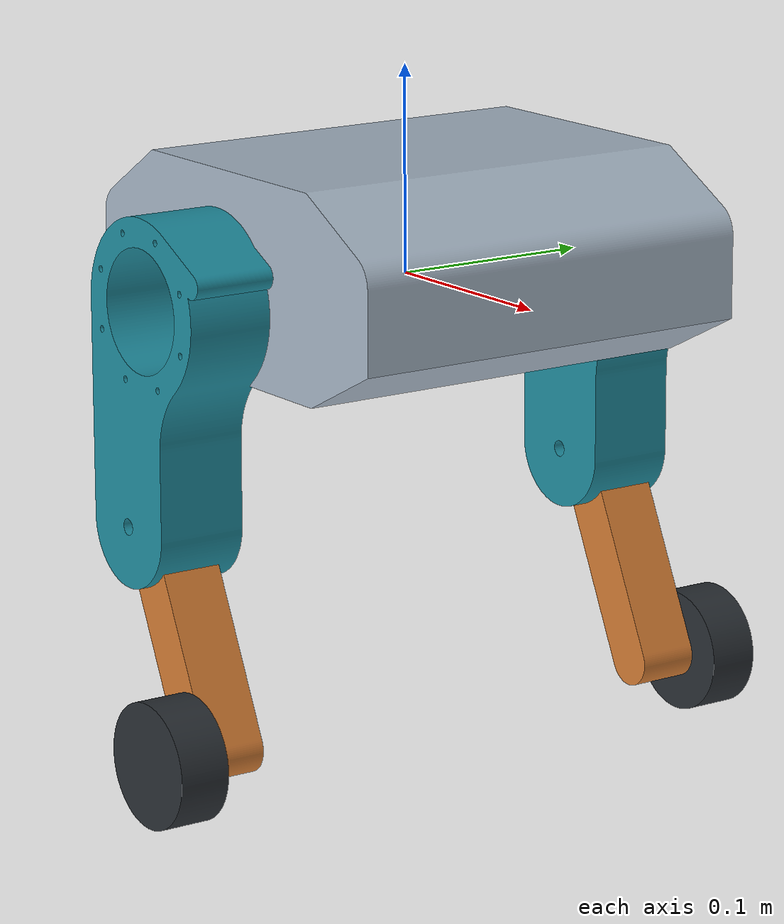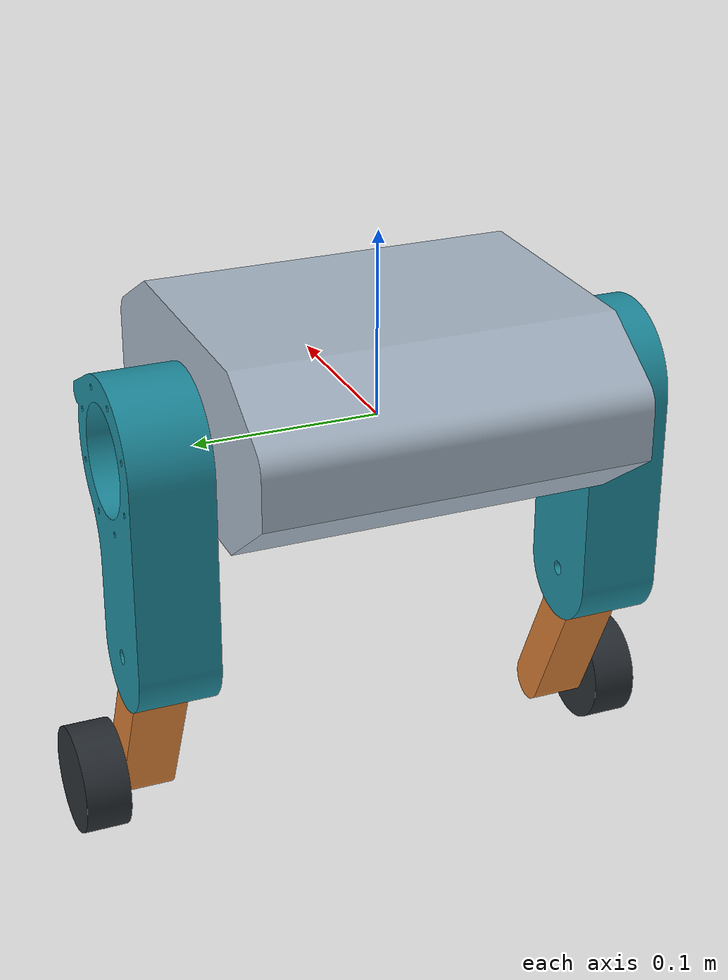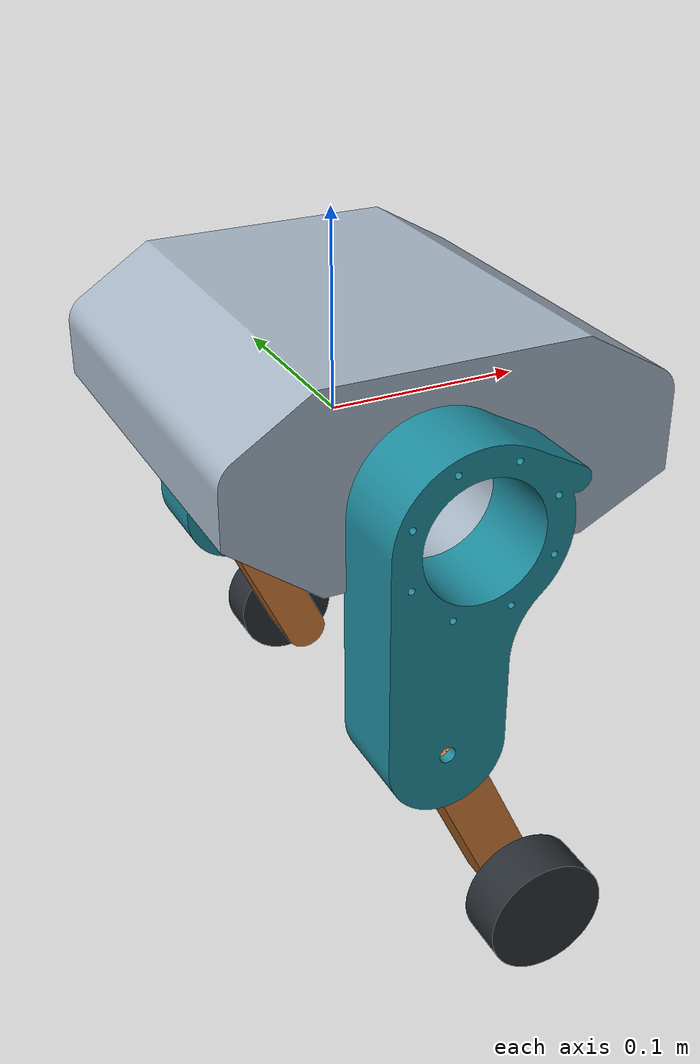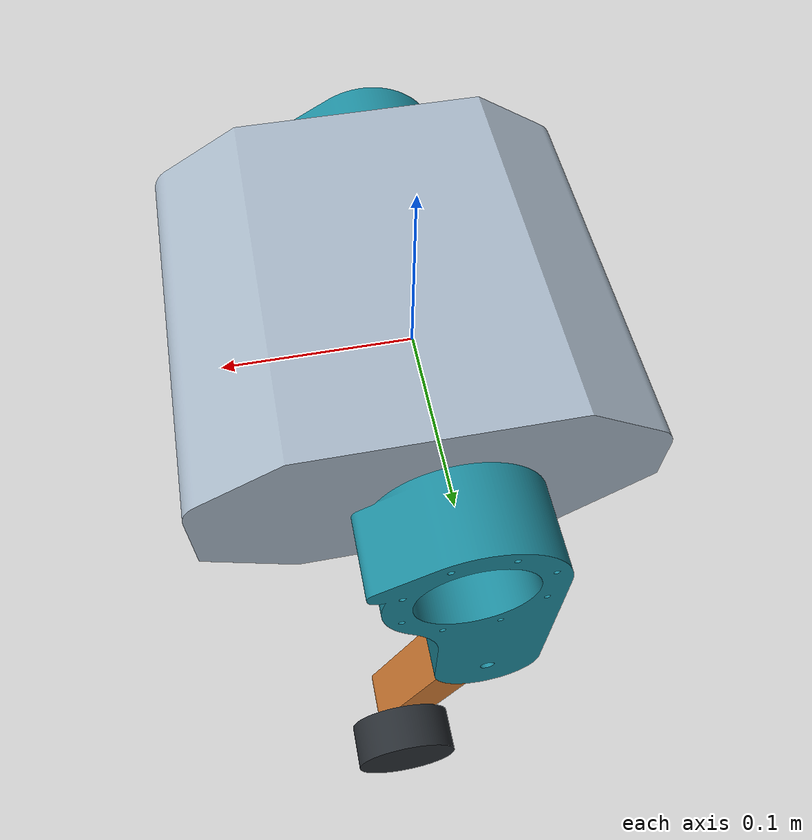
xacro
<?xml version="1.0"?>
<robot name="tap_robot" xmlns:xacro="http://www.ros.org/wiki/xacro">
  <xacro:arg name="simulation" default="true"/>
  <xacro:include filename="robot.urdf.xacro"/>
  <ros2_control name="GazeboSimSystem" type="system">
    <hardware>
      <xacro:if value="${jump_model}">
        <plugin>tap_sim/BoundedGazeboSystem</plugin>
        <param name="leg_speed_limit">${jump_leg_speed}</param>
        <param name="leg_velocity_damping">$(arg jump_leg_velocity_damping)</param>
      </xacro:if>
      <xacro:unless value="${jump_model}"><plugin>gz_ros2_control/GazeboSimSystem</plugin></xacro:unless>
    </hardware>
    <!-- Neutral stand from CAD whole-body COM, not a redefinition of joint zero. -->
    <xacro:macro name="actuator" params="name interface initial:=0">
      <joint name="${name}">
        <command_interface name="${interface}"/>
        <state_interface name="position"><param name="initial_value">${initial}</param></state_interface>
        <state_interface name="velocity"/>
        <state_interface name="effort"/>
      </joint>
    </xacro:macro>
    <xacro:actuator name="cad_left_hip" interface="effort" initial="0.11548309575"/>
    <xacro:actuator name="cad_left_knee" interface="effort"/>
    <xacro:actuator name="cad_right_hip" interface="effort" initial="0.11548309575"/>
    <xacro:actuator name="cad_right_knee" interface="effort"/>
    <xacro:actuator name="cad_left_wheel" interface="velocity"/>
    <xacro:actuator name="cad_right_wheel" interface="velocity"/>
  </ros2_control>
  <gazebo>
    <!-- No model-pose publisher: pose is simulator ground truth and is not a
         member of the MPU6500 + six-encoder sensing contract. -->
    <plugin filename="gz_ros2_control-system" name="gz_ros2_control::GazeboSimROS2ControlPlugin">
      <parameters>$(find tap_sim)/config/ros2_control.yaml</parameters>
    </plugin>
  </gazebo>
  <gazebo reference="cad_body">
    <sensor name="imu_sensor" type="imu">
      <pose>0 0 0 0 0 0</pose>
      <always_on>true</always_on>
      <update_rate>500</update_rate>
      <topic>/imu</topic>
      <gz_frame_id>cad_body</gz_frame_id>
      <imu/>
    </sensor>
  </gazebo>
  <gazebo reference="cad_left_wheel_link"><mu1>1.0</mu1><mu2>1.0</mu2></gazebo>
  <gazebo reference="cad_right_wheel_link"><mu1>1.0</mu1><mu2>1.0</mu2></gazebo>
</robot>

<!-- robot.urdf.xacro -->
<robot name="cad_wheel_leg" xmlns:xacro="http://www.ros.org/wiki/xacro">
  <!-- CAD pose is joint zero. Inertials are estimates; see PHYSICS.md. -->
  <xacro:arg name="simulation" default="false"/>
  <xacro:arg name="jump_model" default="false"/>
  <xacro:arg name="jump_leg_speed" default="12.566370614359172"/>
  <xacro:arg name="jump_leg_velocity_damping" default="0.0"/>
  <xacro:arg name="measure_contacts" default="false"/>
  <xacro:property name="jump_leg_speed" value="${float('$(arg jump_leg_speed)')}"/>
  <xacro:property name="jump_model" value="${'$(arg jump_model)' == 'true' and '$(arg simulation)' == 'true'}"/>
  <xacro:property name="measure_contacts" value="${'$(arg measure_contacts)' == 'true' and '$(arg simulation)' == 'true'}"/>
  <xacro:property name="simulation" value="${'$(arg simulation)' == 'true'}"/>
  <xacro:property name="mesh_root" value="package://tap_robot_description/description/cad_robot/meshes"/>
  <xacro:property name="masses" value="${xacro.load_yaml('masses.yaml')}"/>
  <xacro:property name="mesh_inertials" value="${xacro.load_yaml('mesh_inertials.yaml')}"/>
  <material name="cad_body"><color rgba="0.65 0.71 0.77 1"/></material>
  <material name="cad_thigh"><color rgba="0.12 0.55 0.62 1"/></material>
  <material name="cad_shin"><color rgba="0.82 0.48 0.20 1"/></material>
  <material name="cad_tire"><color rgba="0.16 0.18 0.20 1"/></material>

  <xacro:macro name="mesh_link" params="name mesh material mass_key mesh_pitch:=0">
    <xacro:property name="mass" value="${masses[mass_key]}"/>
    <xacro:property name="properties" value="${mesh_inertials[mesh]}"/>
    <xacro:property name="com" value="${properties['center_of_mass']}"/>
    <xacro:property name="tensor" value="${properties['inertia_per_kg']}"/>
    <link name="${name}">
      <visual>
        <origin rpy="0 ${mesh_pitch} 0"/>
        <geometry><mesh filename="${mesh_root}/${mesh}.stl"/></geometry>
        <material name="${material}"/>
      </visual>
      <xacro:if value="${simulation}">
        <!-- Primitive envelopes avoid unstable concave triangle contact. -->
        <collision name="${name}_collision">
          <xacro:if value="${mass_key == 'wheel'}">
            <origin rpy="${pi / 2} 0 0"/>
            <geometry><cylinder radius="0.03" length="0.025"/></geometry>
          </xacro:if>
          <xacro:if value="${mass_key == 'body'}">
            <origin xyz="${cos(mesh_pitch) * 0.01321673 - sin(mesh_pitch) * 0.011} -0.0025 ${-sin(mesh_pitch) * 0.01321673 - cos(mesh_pitch) * 0.011}" rpy="0 ${mesh_pitch} 0"/>
            <geometry><box size="0.09757 0.205 0.222"/></geometry>
          </xacro:if>
          <xacro:if value="${mass_key == 'thigh'}">
            <origin xyz="-0.007054675 0 -0.05238371" rpy="0 0.133864 0"/>
            <geometry><box size="0.035 0.044 0.106"/></geometry>
          </xacro:if>
          <xacro:if value="${mass_key == 'shin'}">
            <origin xyz="0.02331538 0 -0.05" rpy="0 -0.436333 0"/>
            <geometry><box size="0.03 0.03 0.11034"/></geometry>
          </xacro:if>
        </collision>
      </xacro:if>
      <inertial>
        <!-- Rotate COM and tensor frame with the mesh, leaving joint frames unchanged. -->
        <origin xyz="${cos(mesh_pitch) * com[0] + sin(mesh_pitch) * com[2]} ${com[1]} ${-sin(mesh_pitch) * com[0] + cos(mesh_pitch) * com[2]}" rpy="0 ${mesh_pitch} 0"/>
        <mass value="${mass}"/>
        <inertia ixx="${mass * tensor['ixx']}" ixy="${mass * tensor['ixy']}"
                 ixz="${mass * tensor['ixz']}" iyy="${mass * tensor['iyy']}"
                 iyz="${mass * tensor['iyz']}" izz="${mass * tensor['izz']}"/>
      </inertial>
    </link>
  </xacro:macro>

  <xacro:unless value="${simulation}">
  <link name="cad_ground"/>
  <joint name="cad_display_mount" type="fixed">
    <parent link="cad_ground"/><child link="cad_body"/>
    <origin xyz="0 0 0.23476742"/>
  </joint>
  </xacro:unless>
  <xacro:mesh_link name="cad_body" mesh="body" material="cad_body" mass_key="body" mesh_pitch="${-pi / 2}"/>

  <xacro:macro name="leg" params="side sign">
    <xacro:mesh_link name="cad_${side}_thigh" mesh="${side}_thigh" material="cad_thigh" mass_key="thigh"/>
    <joint name="cad_${side}_hip" type="revolute">
      <parent link="cad_body"/><child link="cad_${side}_thigh"/>
      <origin xyz="0 ${sign * 0.125} 0"/>
      <axis xyz="0 1 0"/>
      <!-- Jump velocity is a numerical solver guard, NOT the motor cutoff. -->
      <limit lower="-1.57" upper="1.57" effort="${5 if jump_model else (12 if simulation else 1)}" velocity="${1000 if jump_model else (15 if simulation else 1)}"/>
      <xacro:if value="${simulation}"><dynamics damping="${0.02 if jump_model else 1.0}" friction="0.0"/></xacro:if>
    </joint>

    <xacro:mesh_link name="cad_${side}_shin" mesh="${side}_shin" material="cad_shin" mass_key="shin"/>
    <joint name="cad_${side}_knee" type="revolute">
      <parent link="cad_${side}_thigh"/><child link="cad_${side}_shin"/>
      <origin xyz="-0.01410935 ${sign * 0.002} -0.10476742"/>
      <axis xyz="0 1 0"/>
      <limit lower="-2.1" upper="2.1" effort="${5 if jump_model else (12 if simulation else 1)}" velocity="${1000 if jump_model else (15 if simulation else 1)}"/>
      <xacro:if value="${simulation}"><dynamics damping="${0.02 if jump_model else 1.0}" friction="0.0"/></xacro:if>
    </joint>

    <xacro:mesh_link name="cad_${side}_wheel_link" mesh="${side}_wheel" material="cad_tire" mass_key="wheel"/>
    <joint name="cad_${side}_wheel" type="continuous">
      <parent link="cad_${side}_shin"/><child link="cad_${side}_wheel_link"/>
      <origin xyz="0.04663076 ${sign * 0.0275} -0.1"/>
      <axis xyz="0 1 0"/>
      <limit effort="${0.13 if jump_model else 1}" velocity="${1000 if jump_model else (80 if simulation else 1)}"/>
      <xacro:if value="${simulation}"><dynamics damping="0.001" friction="0.0"/></xacro:if>
    </joint>
  </xacro:macro>

  <xacro:leg side="left" sign="${1}"/>
  <xacro:leg side="right" sign="${-1}"/>
</robot>
